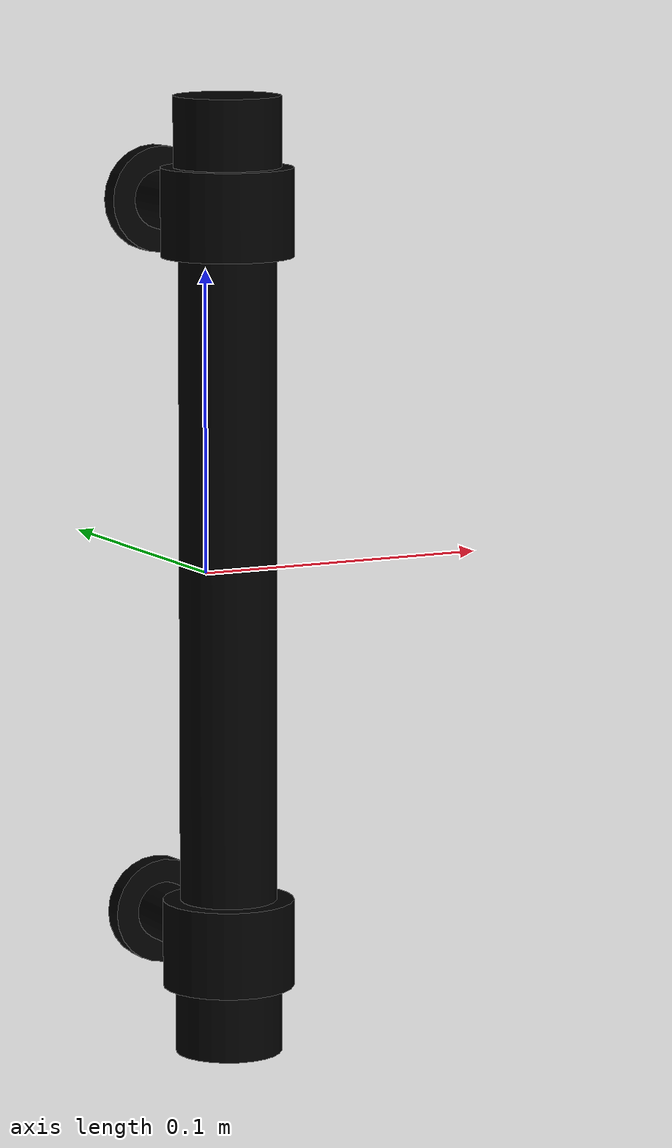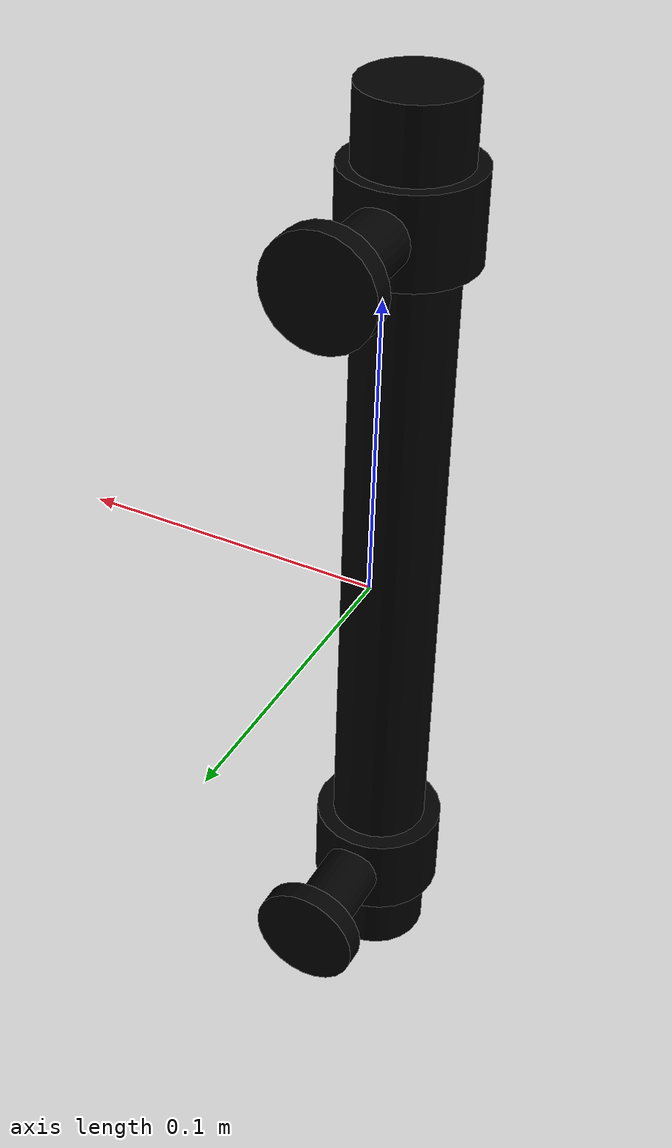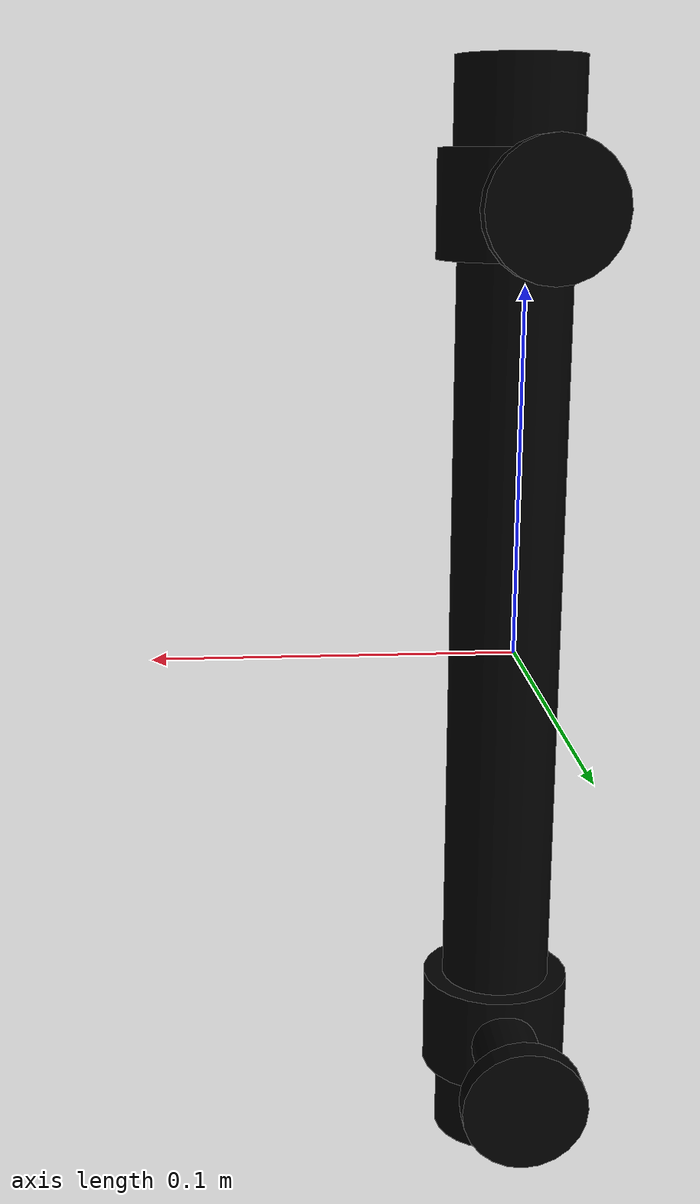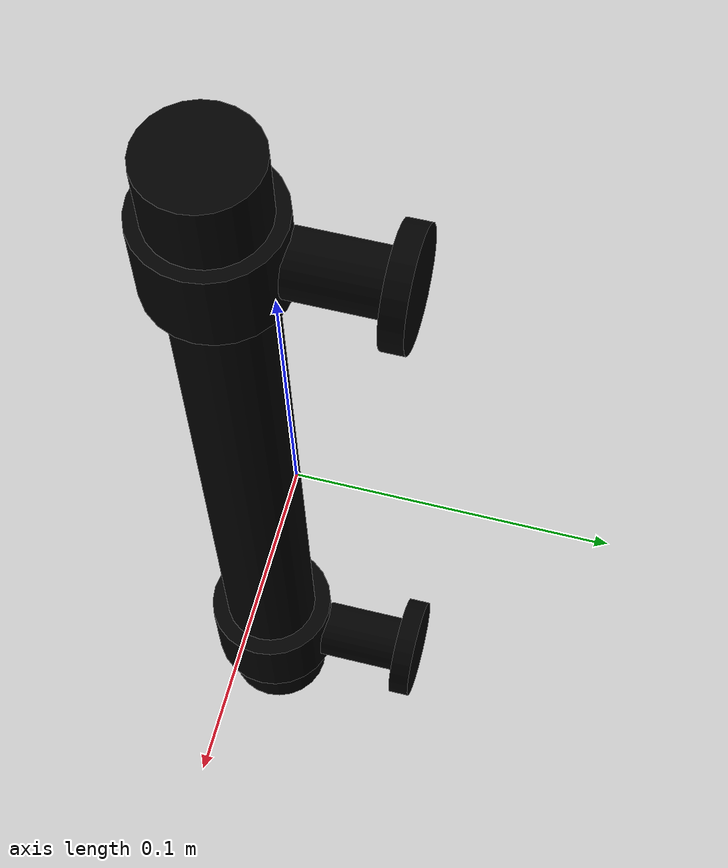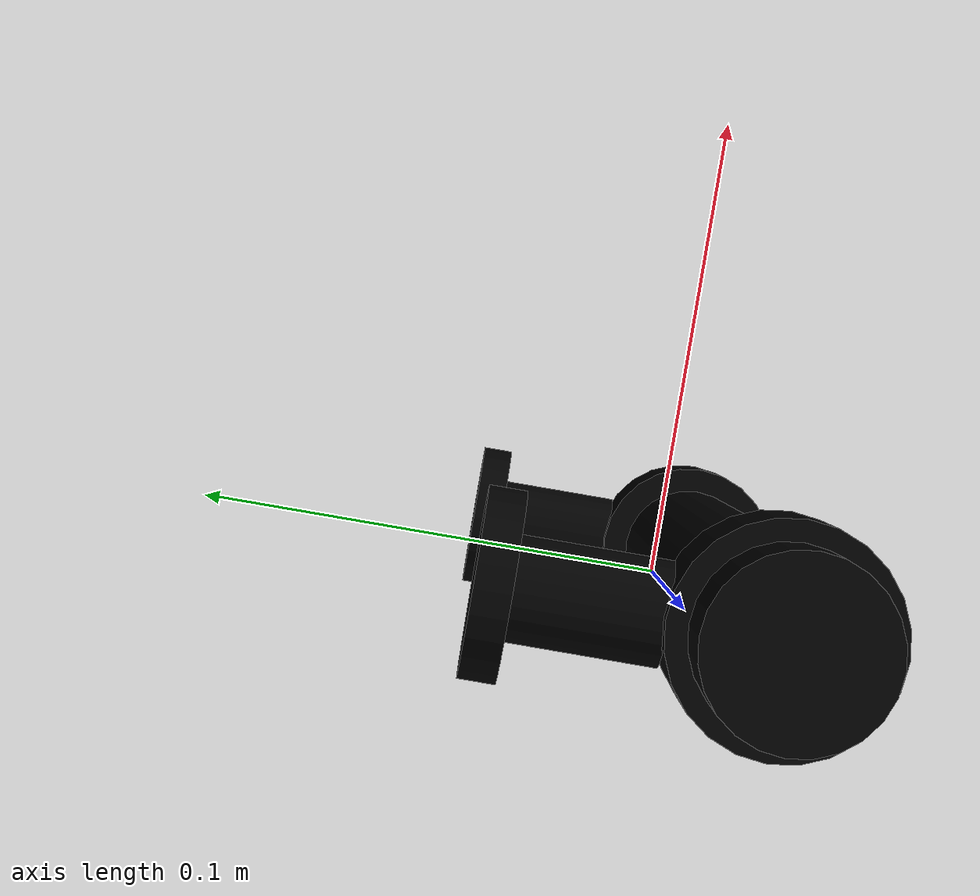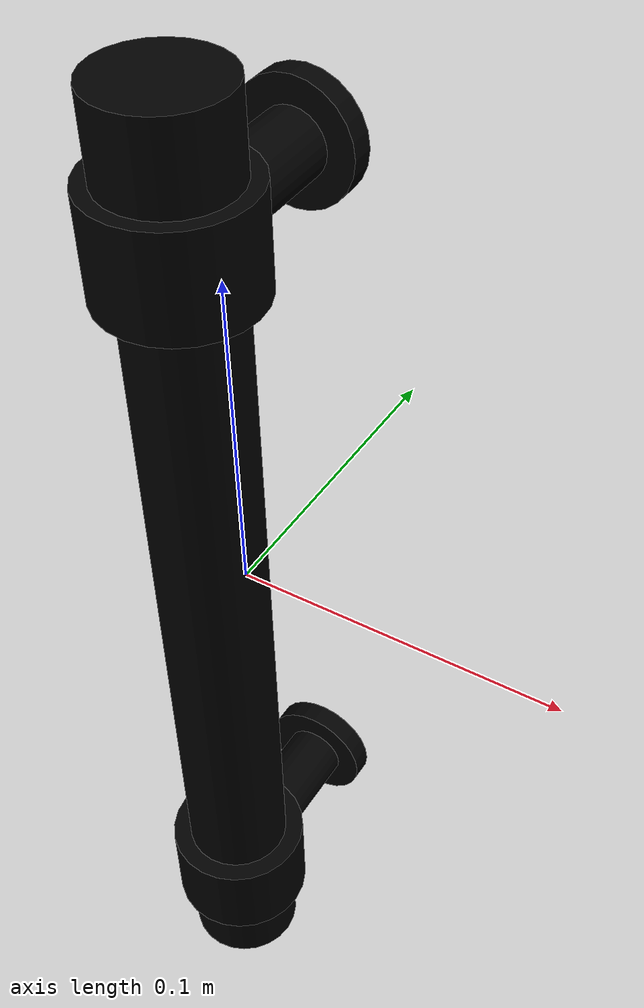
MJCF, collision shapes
<?xml version="1.0" ?>
<mujoco model="model">
    <compiler angle="radian"/>
    <asset>
        <mesh file="visuals/CabinetHandle026.obj" name="mesh"/>
        <texture file="visuals/T_BC001.png" name="tex" type="2d"/>
        <material name="mat" rgba="1 1 1 1.0" texture="tex" shininess="0.5" specular="0.3103448502657381"/>
    </asset>
    <default>
        <default class="visual">
            <geom conaffinity="0" contype="0" group="1" type="mesh"/>
        </default>
        <default class="collision">
            <geom group="0" rgba="0 0 0 0"/>
        </default>
        <default class="spawn">
            <geom group="0" rgba="0 0 0 0" contype="0" conaffinity="0"/>
            <site group="0" rgba="0 0 0 0"/>
        </default>
    </default>
    <worldbody>
        <body>
            <body name="object">
                <geom mesh="mesh" type="mesh" solimp="0.998 0.998 0.001" solref="0.001 1" density="100" friction="0.95 0.3 0.1" class="visual" material="mat"/>
                <geom class="collision" type="cylinder" pos="0.0 0.03644353151321411 -0.12027799338102341" size="0.017641788348555565 0.00350715103559196" quat="0.7071067094802856 0.70710688829422 0.0 0.0" name="handle_connector"/>
                <geom class="collision" type="cylinder" pos="-1.4848119955779282e-10 0.01901484839618206 -0.12027799338102341" size="0.009809747338294983 0.014196811243891716" quat="0.7071067094802856 0.70710688829422 0.0 0.0"/>
                <geom class="collision" type="cylinder" pos="-1.4848119955779282e-10 0.03644353151321411 0.12025080621242523" size="0.017642637714743614 0.00350715103559196" quat="0.7071067094802856 0.70710688829422 0.0 0.0"/>
                <geom class="collision" type="cylinder" pos="-1.4848119955779282e-10 0.01901484839618206 0.12025080621242523" size="0.009809747338294983 0.014196811243891716" quat="0.7071067094802856 0.70710688829422 0.0 0.0"/>
                <geom class="collision" type="cylinder" pos="1.1878495409511913e-10 -0.015799321234226227 0.0" size="0.01596938818693161 0.11260999739170074" quat="1.0 0.0 0.0 0.0"/>
                <geom class="collision" type="cylinder" pos="1.1878495409511913e-10 -0.015799321234226227 0.12046639621257782" size="0.021675603464245796 0.014435467310249805" quat="1.0 0.0 0.0 0.0"/>
                <geom class="collision" type="cylinder" pos="1.1878495409511913e-10 -0.015799321234226227 -0.12058164924383163" size="0.021675603464245796 0.014435467310249805" quat="1.0 0.0 0.0 0.0"/>
                <geom class="collision" type="cylinder" pos="1.1878495409511913e-10 -0.015799321234226227 0.14356964826583862" size="0.017545834183692932 0.01443546637892723" quat="1.0 0.0 0.0 0.0"/>
                <geom class="collision" type="cylinder" pos="1.1878495409511913e-10 -0.015799321234226227 -0.14283524453639984" size="0.017545834183692932 0.01443546637892723" quat="1.0 0.0 0.0 0.0"/>
            </body>
        </body>
    </worldbody>
    <actuator/>
</mujoco>
